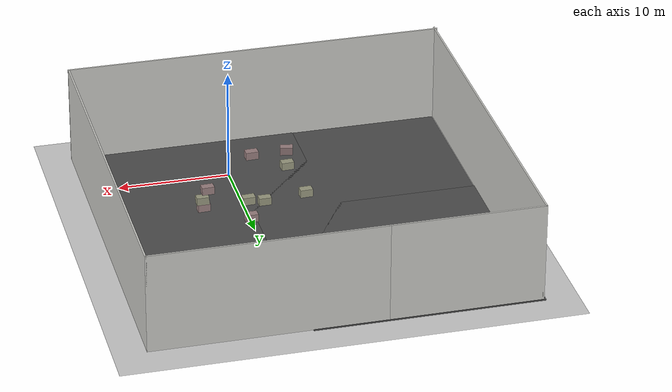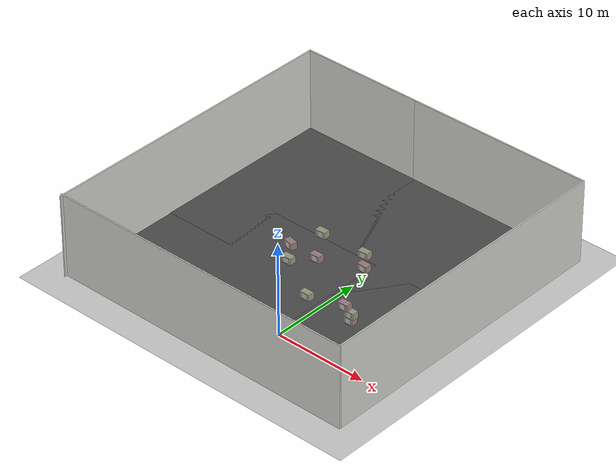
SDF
<sdf version="1.6">
 <world name="default">
  <light name="sun" type="directional">
   <pose>0 0 10 0 -0 0</pose>
   <diffuse>0.8 0.8 0.8 1</diffuse>
   <specular>0.2 0.2 0.2 1</specular>
   <attenuation>
    <range>1000</range>
    <constant>0.9</constant>
    <linear>0.01</linear>
    <quadratic>0.001</quadratic>
   </attenuation>
   <direction>-0.5 0.1 -0.9</direction>
  </light>
  <model name="ground_plane">
   <static>1</static>
   <link name="link">
    <collision name="collision">
     <geometry><plane><normal>0 0 1</normal><size>100 100</size></plane></geometry>
     <surface><friction><ode><mu>100</mu><mu2>50</mu2></ode></friction></surface>
    </collision>
    <visual name="visual">
     <cast_shadows>0</cast_shadows>
     <geometry><plane><normal>0 0 1</normal><size>100 100</size></plane></geometry>
     <material>
      <script><uri>file://media/materials/scripts/gazebo.material</uri><name>Gazebo/Grey</name></script>
     </material>
    </visual>
   </link>
  </model>
  <gravity>0 0 -9.8</gravity>
  <magnetic_field>6e-06 2.3e-05 -4.2e-05</magnetic_field>
  <atmosphere type="adiabatic"/>
  <physics name="default_physics" default="0" type="ode">
   <max_step_size>0.001</max_step_size>
   <real_time_factor>1</real_time_factor>
   <real_time_update_rate>1000</real_time_update_rate>
  </physics>
  <scene><ambient>0.4 0.4 0.4 1</ambient><background>0.7 0.7 0.7 1</background><shadows>1</shadows></scene>
  <spherical_coordinates>
   <surface_model>EARTH_WGS84</surface_model>
   <latitude_deg>0</latitude_deg>
   <longitude_deg>0</longitude_deg>
   <elevation>0</elevation>
   <heading_deg>0</heading_deg>
  </spherical_coordinates>
  <model name="medium_box_qr2">
   <pose>-1.87257 5.80439 0.399455 0.000191 -1.3e-05 3.13683</pose>
   <static>0</static>
   <link name="link">
    <inertial>
     <mass>30</mass>
     <inertia><ixx>1</ixx><ixy>0</ixy><ixz>0</ixz><iyy>1</iyy><iyz>0</iyz><izz>1</izz></inertia>
    </inertial>
    <collision name="collision">
     <geometry><box><size>1.1 0.7 0.7</size></box></geometry>
     <surface><contact><ode><max_vel>0.1</max_vel><min_depth>0.001</min_depth></ode></contact></surface>
    </collision>
    <visual name="visual">
     <geometry><box><size>1.1 0.7 0.7</size></box></geometry>
     <material>
      <lighting>1</lighting>
      <script><uri>file://media/materials/scripts/gazebo.material</uri><name>Gazebo/Grey</name></script>
      <shader type="pixel"><normal_map>__default__</normal_map></shader>
      <ambient>0.6 0.6 0.5 1</ambient>
      <diffuse>0.3 0.3 0.3 1</diffuse>
      <specular>0.01 0.01 0.01 1</specular>
      <emissive>0 0 0 1</emissive>
     </material>
    </visual>
    <visual name="visual_qr">
     <pose>0 0.36 0 0 -0 0</pose>
     <geometry><box><size>0.6 0.005 0.6</size></box></geometry>
     <material>
      <script>
       <uri>model://medium_box_qr2/materials/scripts</uri>
       <uri>model://medium_box_qr2/materials/textures</uri>
       <name>QR_code/qr1</name>
      </script>
     </material>
    </visual>
   </link>
  </model>
  <model name="medium_box_qr">
   <pose>3.13645 5.36923 1.91264 4e-06 -0.001817 -3.10671</pose>
   <static>0</static>
   <link name="link">
    <inertial>
     <mass>30</mass>
     <inertia><ixx>1</ixx><ixy>0</ixy><ixz>0</ixz><iyy>1</iyy><iyz>0</iyz><izz>1</izz></inertia>
    </inertial>
    <collision name="collision">
     <geometry><box><size>1.1 0.7 0.7</size></box></geometry>
     <surface><contact><ode><max_vel>0.1</max_vel><min_depth>0.001</min_depth></ode></contact></surface>
    </collision>
    <visual name="visual">
     <geometry><box><size>1.1 0.7 0.7</size></box></geometry>
     <material>
      <lighting>1</lighting>
      <script><uri>file://media/materials/scripts/gazebo.material</uri><name>Gazebo/Grey</name></script>
      <shader type="pixel"><normal_map>__default__</normal_map></shader>
      <ambient>0.6 0.5 0.5 1</ambient>
      <diffuse>0.3 0.3 0.3 1</diffuse>
      <specular>0.01 0.01 0.01 1</specular>
      <emissive>0 0 0 1</emissive>
     </material>
    </visual>
    <visual name="visual_qr">
     <pose>0 0.36 0 0 -0 0</pose>
     <geometry><box><size>0.6 0.005 0.6</size></box></geometry>
     <material>
      <script>
       <uri>model://medium_box_qr/materials/scripts</uri>
       <uri>model://medium_box_qr/materials/textures</uri>
       <name>QR_code/qr2</name>
      </script>
     </material>
    </visual>
   </link>
  </model>
  <model name="medium_box_qr2_clone">
   <pose>-3.9512 5.59643 3.56252 2.3e-05 1.3e-05 -3.09418</pose>
   <static>0</static>
   <link name="link">
    <inertial>
     <mass>30</mass>
     <inertia><ixx>1</ixx><ixy>0</ixy><ixz>0</ixz><iyy>1</iyy><iyz>0</iyz><izz>1</izz></inertia>
    </inertial>
    <collision name="collision">
     <geometry><box><size>1.1 0.7 0.7</size></box></geometry>
     <surface><contact><ode><max_vel>0.1</max_vel><min_depth>0.001</min_depth></ode></contact></surface>
    </collision>
    <visual name="visual">
     <geometry><box><size>1.1 0.7 0.7</size></box></geometry>
     <material>
      <lighting>1</lighting>
      <script><uri>file://media/materials/scripts/gazebo.material</uri><name>Gazebo/Grey</name></script>
      <shader type="pixel"><normal_map>__default__</normal_map></shader>
      <ambient>0.6 0.6 0.5 1</ambient>
      <diffuse>0.3 0.3 0.3 1</diffuse>
      <specular>0.01 0.01 0.01 1</specular>
      <emissive>0 0 0 1</emissive>
     </material>
    </visual>
    <visual name="visual_qr">
     <pose>0 0.36 0 0 -0 0</pose>
     <geometry><box><size>0.6 0.005 0.6</size></box></geometry>
     <material>
      <script>
       <uri>model://medium_box_qr2/materials/scripts</uri>
       <uri>model://medium_box_qr2/materials/textures</uri>
       <name>QR_code/qr1</name>
      </script>
     </material>
    </visual>
   </link>
  </model>
  <model name="medium_box_qr_clone">
   <pose>-0.705527 5.86607 5.15966 -9.7e-05 -0.006379 -3.11323</pose>
   <static>0</static>
   <link name="link">
    <inertial>
     <mass>30</mass>
     <inertia><ixx>1</ixx><ixy>0</ixy><ixz>0</ixz><iyy>1</iyy><iyz>0</iyz><izz>1</izz></inertia>
    </inertial>
    <collision name="collision">
     <geometry><box><size>1.1 0.7 0.7</size></box></geometry>
     <surface><contact><ode><max_vel>0.1</max_vel><min_depth>0.001</min_depth></ode></contact></surface>
    </collision>
    <visual name="visual">
     <geometry><box><size>1.1 0.7 0.7</size></box></geometry>
     <material>
      <lighting>1</lighting>
      <script><uri>file://media/materials/scripts/gazebo.material</uri><name>Gazebo/Grey</name></script>
      <shader type="pixel"><normal_map>__default__</normal_map></shader>
      <ambient>0.6 0.5 0.5 1</ambient>
      <diffuse>0.3 0.3 0.3 1</diffuse>
      <specular>0.01 0.01 0.01 1</specular>
      <emissive>0 0 0 1</emissive>
     </material>
    </visual>
    <visual name="visual_qr">
     <pose>0 0.36 0 0 -0 0</pose>
     <geometry><box><size>0.6 0.005 0.6</size></box></geometry>
     <material>
      <script>
       <uri>model://medium_box_qr/materials/scripts</uri>
       <uri>model://medium_box_qr/materials/textures</uri>
       <name>QR_code/qr2</name>
      </script>
     </material>
    </visual>
   </link>
  </model>
  <model name="medium_box_qr2_clone_clone">
   <pose>3.66533 5.64105 1.09934 2.7e-05 -0.00108 3.13737</pose>
   <static>0</static>
   <link name="link">
    <inertial>
     <mass>30</mass>
     <inertia><ixx>1</ixx><ixy>0</ixy><ixz>0</ixz><iyy>1</iyy><iyz>0</iyz><izz>1</izz></inertia>
    </inertial>
    <collision name="collision">
     <geometry><box><size>1.1 0.7 0.7</size></box></geometry>
     <surface><contact><ode><max_vel>0.1</max_vel><min_depth>0.001</min_depth></ode></contact></surface>
    </collision>
    <visual name="visual">
     <geometry><box><size>1.1 0.7 0.7</size></box></geometry>
     <material>
      <lighting>1</lighting>
      <script><uri>file://media/materials/scripts/gazebo.material</uri><name>Gazebo/Grey</name></script>
      <shader type="pixel"><normal_map>__default__</normal_map></shader>
      <ambient>0.6 0.6 0.5 1</ambient>
      <diffuse>0.3 0.3 0.3 1</diffuse>
      <specular>0.01 0.01 0.01 1</specular>
      <emissive>0 0 0 1</emissive>
     </material>
    </visual>
    <visual name="visual_qr">
     <pose>0 0.36 0 0 -0 0</pose>
     <geometry><box><size>0.6 0.005 0.6</size></box></geometry>
     <material>
      <script>
       <uri>model://medium_box_qr2/materials/scripts</uri>
       <uri>model://medium_box_qr2/materials/textures</uri>
       <name>QR_code/qr1</name>
      </script>
     </material>
    </visual>
   </link>
  </model>
  <model name="medium_box_qr_clone_0">
   <pose>3.56871 5.62953 0.399681 -1e-06 -0.000573 -3.10641</pose>
   <static>0</static>
   <link name="link">
    <inertial>
     <mass>30</mass>
     <inertia><ixx>1</ixx><ixy>0</ixy><ixz>0</ixz><iyy>1</iyy><iyz>0</iyz><izz>1</izz></inertia>
    </inertial>
    <collision name="collision">
     <geometry><box><size>1.1 0.7 0.7</size></box></geometry>
     <surface><contact><ode><max_vel>0.1</max_vel><min_depth>0.001</min_depth></ode></contact></surface>
    </collision>
    <visual name="visual">
     <geometry><box><size>1.1 0.7 0.7</size></box></geometry>
     <material>
      <lighting>1</lighting>
      <script><uri>file://media/materials/scripts/gazebo.material</uri><name>Gazebo/Grey</name></script>
      <shader type="pixel"><normal_map>__default__</normal_map></shader>
      <ambient>0.6 0.5 0.5 1</ambient>
      <diffuse>0.3 0.3 0.3 1</diffuse>
      <specular>0.01 0.01 0.01 1</specular>
      <emissive>0 0 0 1</emissive>
     </material>
    </visual>
    <visual name="visual_qr">
     <pose>0 0.36 0 0 -0 0</pose>
     <geometry><box><size>0.6 0.005 0.6</size></box></geometry>
     <material>
      <script>
       <uri>model://medium_box_qr/materials/scripts</uri>
       <uri>model://medium_box_qr/materials/textures</uri>
       <name>QR_code/qr2</name>
      </script>
     </material>
    </visual>
   </link>
  </model>
  <model name="medium_box_qr_clone_clone">
   <pose>-3.8541 5.82124 5.16013 -0.000174 7e-05 2.9171</pose>
   <static>0</static>
   <link name="link">
    <inertial>
     <mass>30</mass>
     <inertia><ixx>1</ixx><ixy>0</ixy><ixz>0</ixz><iyy>1</iyy><iyz>0</iyz><izz>1</izz></inertia>
    </inertial>
    <collision name="collision">
     <geometry><box><size>1.1 0.7 0.7</size></box></geometry>
     <surface><contact><ode><max_vel>0.1</max_vel><min_depth>0.001</min_depth></ode></contact></surface>
    </collision>
    <visual name="visual">
     <geometry><box><size>1.1 0.7 0.7</size></box></geometry>
     <material>
      <lighting>1</lighting>
      <script><uri>file://media/materials/scripts/gazebo.material</uri><name>Gazebo/Grey</name></script>
      <shader type="pixel"><normal_map>__default__</normal_map></shader>
      <ambient>0.6 0.5 0.5 1</ambient>
      <diffuse>0.3 0.3 0.3 1</diffuse>
      <specular>0.01 0.01 0.01 1</specular>
      <emissive>0 0 0 1</emissive>
     </material>
    </visual>
    <visual name="visual_qr">
     <pose>0 0.36 0 0 -0 0</pose>
     <geometry><box><size>0.6 0.005 0.6</size></box></geometry>
     <material>
      <script>
       <uri>model://medium_box_qr/materials/scripts</uri>
       <uri>model://medium_box_qr/materials/textures</uri>
       <name>QR_code/qr2</name>
      </script>
     </material>
    </visual>
   </link>
  </model>
  <model name="medium_box_qr2_clone_clone_0">
   <pose>-4.36505 10.684 3.57072 4e-06 0.000128 -3.09425</pose>
   <static>0</static>
   <link name="link">
    <inertial>
     <mass>30</mass>
     <inertia><ixx>1</ixx><ixy>0</ixy><ixz>0</ixz><iyy>1</iyy><iyz>0</iyz><izz>1</izz></inertia>
    </inertial>
    <collision name="collision">
     <geometry><box><size>1.1 0.7 0.7</size></box></geometry>
     <surface><contact><ode><max_vel>0.1</max_vel><min_depth>0.001</min_depth></ode></contact></surface>
    </collision>
    <visual name="visual">
     <geometry><box><size>1.1 0.7 0.7</size></box></geometry>
     <material>
      <lighting>1</lighting>
      <script><uri>file://media/materials/scripts/gazebo.material</uri><name>Gazebo/Grey</name></script>
      <shader type="pixel"><normal_map>__default__</normal_map></shader>
      <ambient>0.6 0.6 0.5 1</ambient>
      <diffuse>0.3 0.3 0.3 1</diffuse>
      <specular>0.01 0.01 0.01 1</specular>
      <emissive>0 0 0 1</emissive>
     </material>
    </visual>
    <visual name="visual_qr">
     <pose>0 0.36 0 0 -0 0</pose>
     <geometry><box><size>0.6 0.005 0.6</size></box></geometry>
     <material>
      <script>
       <uri>model://medium_box_qr2/materials/scripts</uri>
       <uri>model://medium_box_qr2/materials/textures</uri>
       <name>QR_code/qr1</name>
      </script>
     </material>
    </visual>
   </link>
  </model>
  <model name="medium_box_qr2_clone_clone_1">
   <pose>0.727417 10.8127 3.57077 0 2.6e-05 -3.09418</pose>
   <static>0</static>
   <link name="link">
    <inertial>
     <mass>30</mass>
     <inertia><ixx>1</ixx><ixy>0</ixy><ixz>0</ixz><iyy>1</iyy><iyz>0</iyz><izz>1</izz></inertia>
    </inertial>
    <collision name="collision">
     <geometry><box><size>1.1 0.7 0.7</size></box></geometry>
     <surface><contact><ode><max_vel>0.1</max_vel><min_depth>0.001</min_depth></ode></contact></surface>
    </collision>
    <visual name="visual">
     <geometry><box><size>1.1 0.7 0.7</size></box></geometry>
     <material>
      <lighting>1</lighting>
      <script><uri>file://media/materials/scripts/gazebo.material</uri><name>Gazebo/Grey</name></script>
      <shader type="pixel"><normal_map>__default__</normal_map></shader>
      <ambient>0.6 0.6 0.5 1</ambient>
      <diffuse>0.3 0.3 0.3 1</diffuse>
      <specular>0.01 0.01 0.01 1</specular>
      <emissive>0 0 0 1</emissive>
     </material>
    </visual>
    <visual name="visual_qr">
     <pose>0 0.36 0 0 -0 0</pose>
     <geometry><box><size>0.6 0.005 0.6</size></box></geometry>
     <material>
      <script>
       <uri>model://medium_box_qr2/materials/scripts</uri>
       <uri>model://medium_box_qr2/materials/textures</uri>
       <name>QR_code/qr1</name>
      </script>
     </material>
    </visual>
   </link>
  </model>
  <model name="medium_box_qr_clone_0_clone">
   <pose>0.530844 10.9574 1.92063 3.7e-05 0.004132 3.13898</pose>
   <static>0</static>
   <link name="link">
    <inertial>
     <mass>30</mass>
     <inertia><ixx>1</ixx><ixy>0</ixy><ixz>0</ixz><iyy>1</iyy><iyz>0</iyz><izz>1</izz></inertia>
    </inertial>
    <collision name="collision">
     <geometry><box><size>1.1 0.7 0.7</size></box></geometry>
     <surface><contact><ode><max_vel>0.1</max_vel><min_depth>0.001</min_depth></ode></contact></surface>
    </collision>
    <visual name="visual">
     <geometry><box><size>1.1 0.7 0.7</size></box></geometry>
     <material>
      <lighting>1</lighting>
      <script><uri>file://media/materials/scripts/gazebo.material</uri><name>Gazebo/Grey</name></script>
      <shader type="pixel"><normal_map>__default__</normal_map></shader>
      <ambient>0.6 0.5 0.5 1</ambient>
      <diffuse>0.3 0.3 0.3 1</diffuse>
      <specular>0.01 0.01 0.01 1</specular>
      <emissive>0 0 0 1</emissive>
     </material>
    </visual>
    <visual name="visual_qr">
     <pose>0 0.36 0 0 -0 0</pose>
     <geometry><box><size>0.6 0.005 0.6</size></box></geometry>
     <material>
      <script>
       <uri>model://medium_box_qr/materials/scripts</uri>
       <uri>model://medium_box_qr/materials/textures</uri>
       <name>QR_code/qr2</name>
      </script>
     </material>
    </visual>
   </link>
  </model>
  <model name="wall_square_height9">
   <pose>-3.9254 10.2177 0 0 -0 0</pose>
   <link name="Wall_14">
    <collision name="Wall_14_Collision">
     <geometry><box><size>13.5 0.15 9</size></box></geometry>
     <pose>0 0 4.5 0 -0 0</pose>
    </collision>
    <visual name="Wall_14_Visual">
     <pose>0 0 4.5 0 -0 0</pose>
     <geometry><box><size>13.5 0.15 9</size></box></geometry>
     <material>
      <script><uri>file://media/materials/scripts/gazebo.material</uri><name>Gazebo/CeilingTiled</name></script>
      <ambient>1 1 1 1</ambient>
     </material>
     <meta><layer>0</layer></meta>
    </visual>
    <pose>-10.1 16.8 0 0 -0 3.14159</pose>
   </link>
   <link name="Wall_15">
    <collision name="Wall_15_Collision">
     <geometry><box><size>33.75 0.15 9</size></box></geometry>
     <pose>0 0 4.5 0 -0 0</pose>
    </collision>
    <visual name="Wall_15_Visual">
     <pose>0 0 4.5 0 -0 0</pose>
     <geometry><box><size>33.75 0.15 9</size></box></geometry>
     <material>
      <script><uri>file://media/materials/scripts/gazebo.material</uri><name>Gazebo/CeilingTiled</name></script>
      <ambient>1 1 1 1</ambient>
     </material>
     <meta><layer>0</layer></meta>
    </visual>
    <pose>-16.775 0 0 0 0 -1.5708</pose>
   </link>
   <link name="Wall_7">
    <collision name="Wall_7_Collision">
     <geometry><box><size>20.5 0.15 9</size></box></geometry>
     <pose>0 0 4.5 0 -0 0</pose>
    </collision>
    <visual name="Wall_7_Visual">
     <pose>0 0 4.5 0 -0 0</pose>
     <geometry><box><size>20.5 0.15 9</size></box></geometry>
     <material>
      <script><uri>file://media/materials/scripts/gazebo.material</uri><name>Gazebo/CeilingTiled</name></script>
      <ambient>1 1 1 1</ambient>
     </material>
     <meta><layer>0</layer></meta>
    </visual>
    <pose>6.75 16.8 0 0 -0 0</pose>
   </link>
   <link name="Wall_8">
    <collision name="Wall_8_Collision">
     <geometry><box><size>33.5 0.15 9</size></box></geometry>
     <pose>0 0 4.5 0 -0 0</pose>
    </collision>
    <visual name="Wall_8_Visual">
     <pose>0 0 4.5 0 -0 0</pose>
     <geometry><box><size>33.5 0.15 9</size></box></geometry>
     <material>
      <script><uri>file://media/materials/scripts/gazebo.material</uri><name>Gazebo/CeilingTiled</name></script>
      <ambient>1 1 1 1</ambient>
     </material>
     <meta><layer>0</layer></meta>
    </visual>
    <pose>16.925 0.125 0 0 0 -1.5708</pose>
   </link>
   <link name="Wall_9">
    <collision name="Wall_9_Collision">
     <geometry><box><size>34 0.15 9</size></box></geometry>
     <pose>0 0 4.5 0 -0 0</pose>
    </collision>
    <visual name="Wall_9_Visual">
     <pose>0 0 4.5 0 -0 0</pose>
     <geometry><box><size>34 0.15 9</size></box></geometry>
     <material>
      <script><uri>file://media/materials/scripts/gazebo.material</uri><name>Gazebo/CeilingTiled</name></script>
      <ambient>1 1 1 1</ambient>
     </material>
     <meta><layer>0</layer></meta>
    </visual>
    <pose>-1e-06 -16.55 0 0 -0 3.14159</pose>
   </link>
   <static>1</static>
  </model>
  <model name="asphalt_plane">
   <static>1</static>
   <link name="link">
    <collision name="collision"><geometry><box><size>20 20 0.1</size></box></geometry></collision>
    <visual name="visual">
     <cast_shadows>0</cast_shadows>
     <geometry><box><size>20 20 0.1</size></box></geometry>
     <material>
      <script>
       <uri>model://asphalt_plane/materials/scripts</uri>
       <uri>model://asphalt_plane/materials/textures</uri>
       <name>vrc/asphalt</name>
      </script>
     </material>
    </visual>
   </link>
   <pose>2.64741 3.75657 0 0 -0 0</pose>
  </model>
  <model name="asphalt_plane_1">
   <static>1</static>
   <link name="link">
    <collision name="collision"><geometry><box><size>20 20 0.1</size></box></geometry></collision>
    <visual name="visual">
     <cast_shadows>0</cast_shadows>
     <geometry><box><size>20 20 0.1</size></box></geometry>
     <material>
      <script>
       <uri>model://asphalt_plane/materials/scripts</uri>
       <uri>model://asphalt_plane/materials/textures</uri>
       <name>vrc/asphalt</name>
      </script>
     </material>
    </visual>
   </link>
   <pose>-10.5511 3.82547 0 0 -0 0</pose>
  </model>
  <model name="asphalt_plane_0">
   <static>1</static>
   <link name="link">
    <collision name="collision"><geometry><box><size>20 20 0.1</size></box></geometry></collision>
    <visual name="visual">
     <cast_shadows>0</cast_shadows>
     <geometry><box><size>20 20 0.1</size></box></geometry>
     <material>
      <script>
       <uri>model://asphalt_plane/materials/scripts</uri>
       <uri>model://asphalt_plane/materials/textures</uri>
       <name>vrc/asphalt</name>
      </script>
     </material>
    </visual>
   </link>
   <pose>2.91312 16.9718 0 0 -0 0</pose>
  </model>
  <model name="asphalt_plane_2">
   <static>1</static>
   <link name="link">
    <collision name="collision"><geometry><box><size>20 20 0.1</size></box></geometry></collision>
    <visual name="visual">
     <cast_shadows>0</cast_shadows>
     <geometry><box><size>20 20 0.1</size></box></geometry>
     <material>
      <script>
       <uri>model://asphalt_plane/materials/scripts</uri>
       <uri>model://asphalt_plane/materials/textures</uri>
       <name>vrc/asphalt</name>
      </script>
     </material>
    </visual>
   </link>
   <pose>-10.927 17.1911 0 0 -0 0</pose>
  </model>
 </world>
</sdf>
